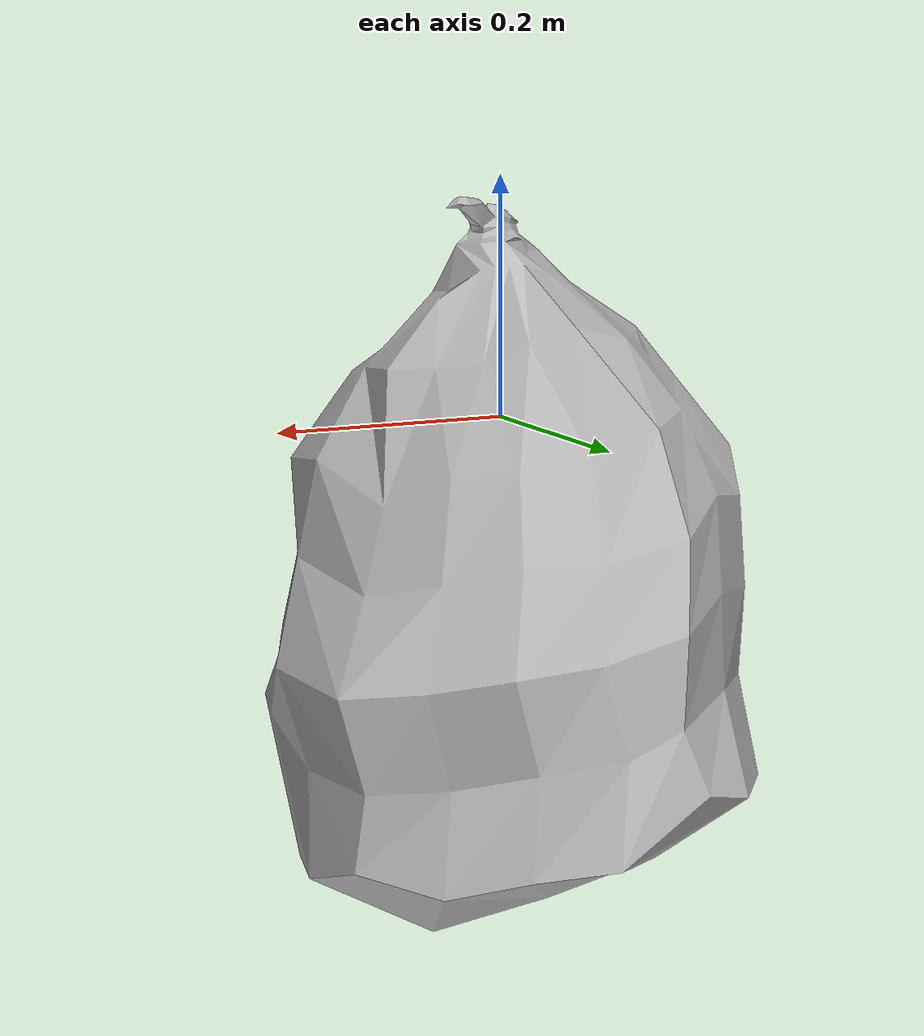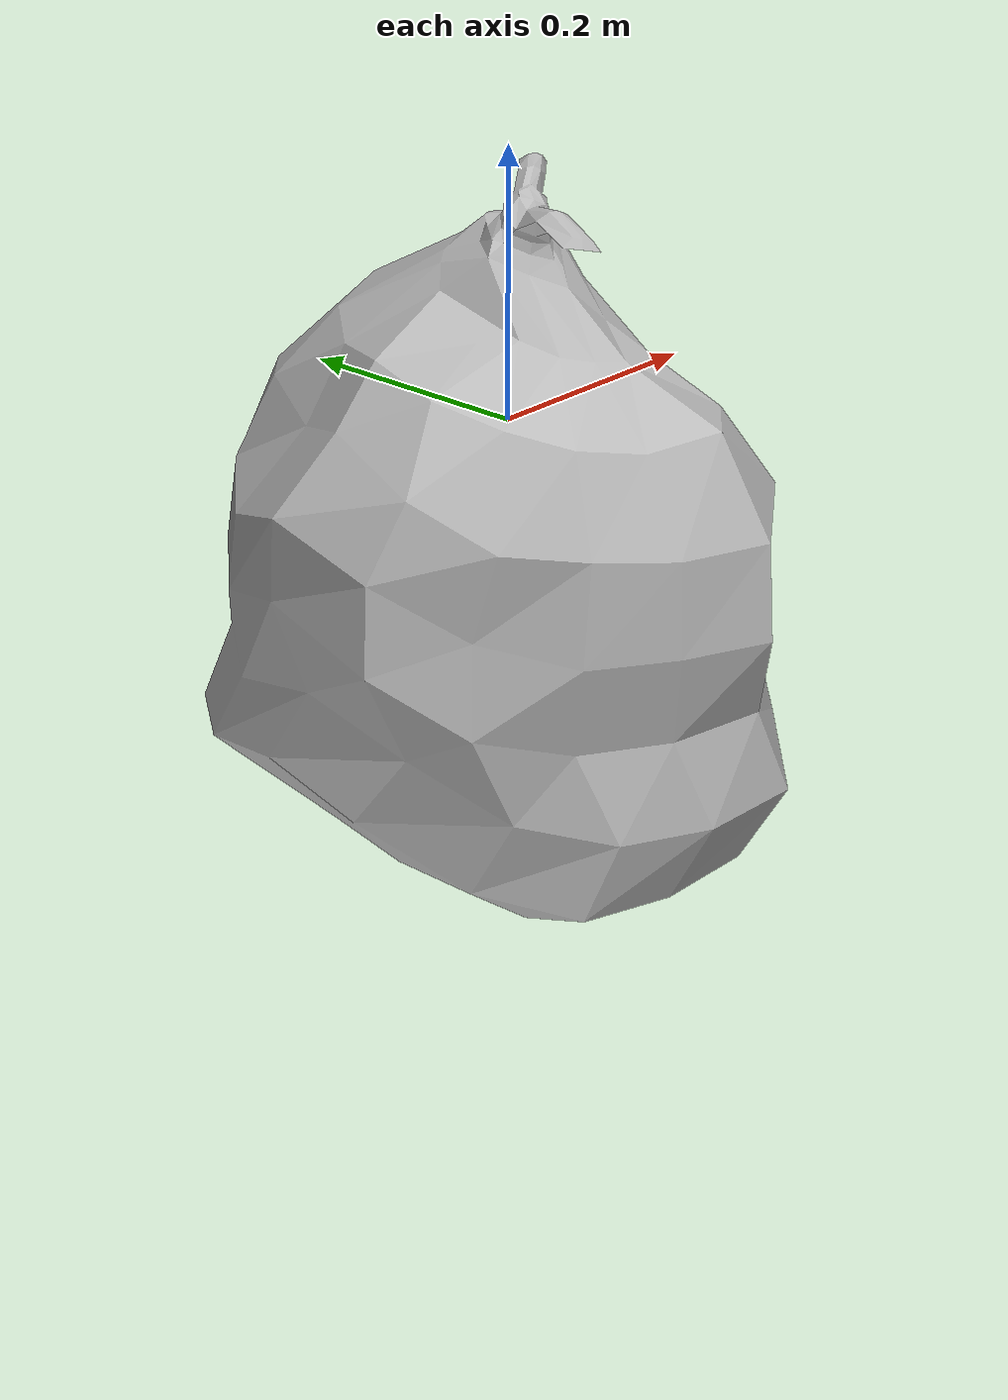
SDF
<?xml version='1.0'?>
<sdf version='1.7'>
  <model name='garbage_bag'>
    <link name='link'>
      <inertial>
        <mass>1</mass>
        <inertia>
          <ixx>0.166667</ixx>
          <ixy>0</ixy>
          <ixz>0</ixz>
          <iyy>0.166667</iyy>
          <iyz>0</iyz>
          <izz>0.166667</izz>
        </inertia>
      </inertial>
      <pose>0 0 0 0 -0 0</pose>
      <visual name='visual'>
        <pose>0 0 0 0 -0 0</pose>
        <geometry>
          <mesh>
            <uri>model://garbage_bag/meshes/garbage_bag.obj</uri>
            <scale>1 1 1</scale>
          </mesh>
        </geometry>
        <transparency>0</transparency>
        <cast_shadows>1</cast_shadows>
      </visual>
      <collision name='collision'>
        <laser_retro>0</laser_retro>
        <max_contacts>10</max_contacts>
        <pose>0 0 0 0 -0 0</pose>
        <geometry>
          <mesh>
            <uri>model://garbage_bag/meshes/garbage_bag.obj</uri>
            <scale>1 1 1</scale>
          </mesh>
        </geometry>
        <surface>
          <friction>
            <ode>
              <mu>1</mu>
              <mu2>1</mu2>
              <fdir1>0 0 0</fdir1>
              <slip1>0</slip1>
              <slip2>0</slip2>
            </ode>
            <torsional>
              <coefficient>1</coefficient>
              <patch_radius>0</patch_radius>
              <surface_radius>0</surface_radius>
              <use_patch_radius>1</use_patch_radius>
              <ode>
                <slip>0</slip>
              </ode>
            </torsional>
          </friction>
          <bounce>
            <restitution_coefficient>0</restitution_coefficient>
            <threshold>1e+06</threshold>
          </bounce>
          <contact>
            <collide_without_contact>0</collide_without_contact>
            <collide_without_contact_bitmask>1</collide_without_contact_bitmask>
            <collide_bitmask>1</collide_bitmask>
            <ode>
              <soft_cfm>0</soft_cfm>
              <soft_erp>0.2</soft_erp>
              <kp>1e+13</kp>
              <kd>1</kd>
              <max_vel>0.01</max_vel>
              <min_depth>0</min_depth>
            </ode>
            <bullet>
              <split_impulse>1</split_impulse>
              <split_impulse_penetration_threshold>-0.01</split_impulse_penetration_threshold>
              <soft_cfm>0</soft_cfm>
              <soft_erp>0.2</soft_erp>
              <kp>1e+13</kp>
              <kd>1</kd>
            </bullet>
          </contact>
        </surface>
      </collision>
    </link>
    <static>0</static>
    <allow_auto_disable>1</allow_auto_disable>
    <plugin name="BuoyancyPlugin" filename="libbuoyancy_gazebo_plugin.so">
      <wave_model>ocean_waves</wave_model>
      <fluid_density>12</fluid_density>
      <fluid_level>0</fluid_level>
      <linear_drag>5</linear_drag>
      <angular_drag>5</angular_drag>
      <buoyancy name="buoyancy_base">
        <link_name>link</link_name>
        <pose>0 0 0 0.25 0 0</pose>
        <geometry>
          <box>
            <size>0.398273 0.494423 0.588817</size>
          </box>
        </geometry>
      </buoyancy>
    </plugin>
  </model>
</sdf>
